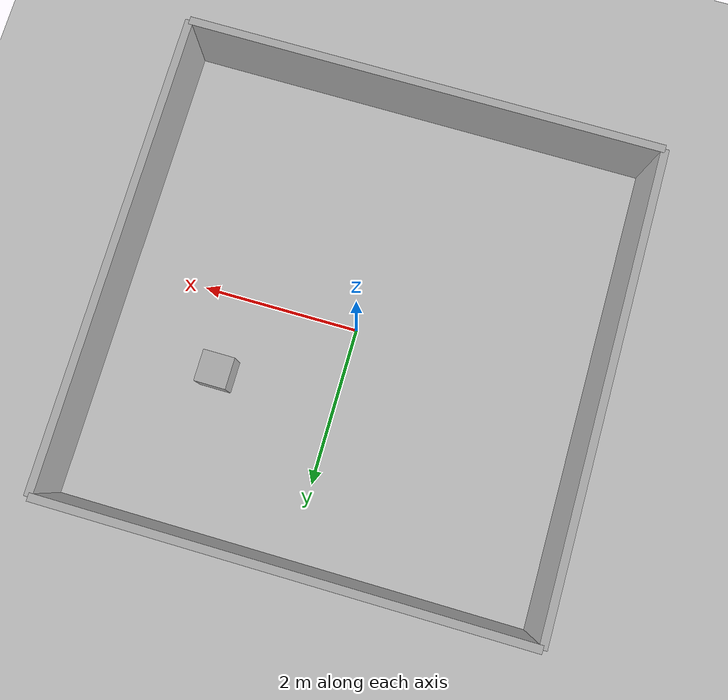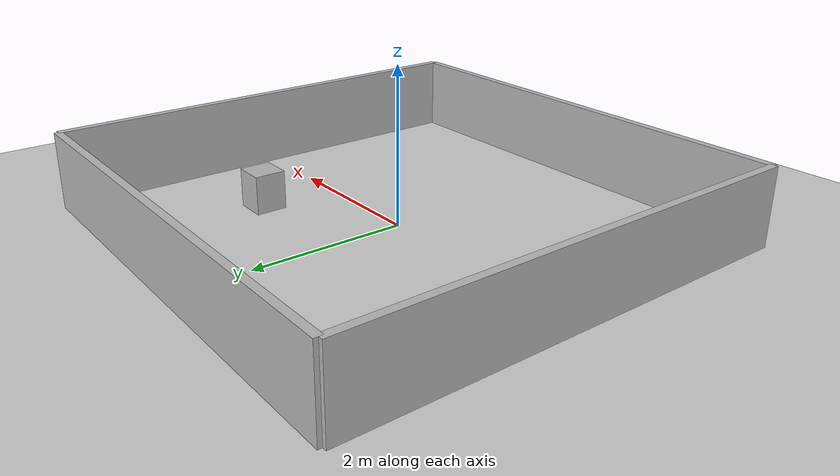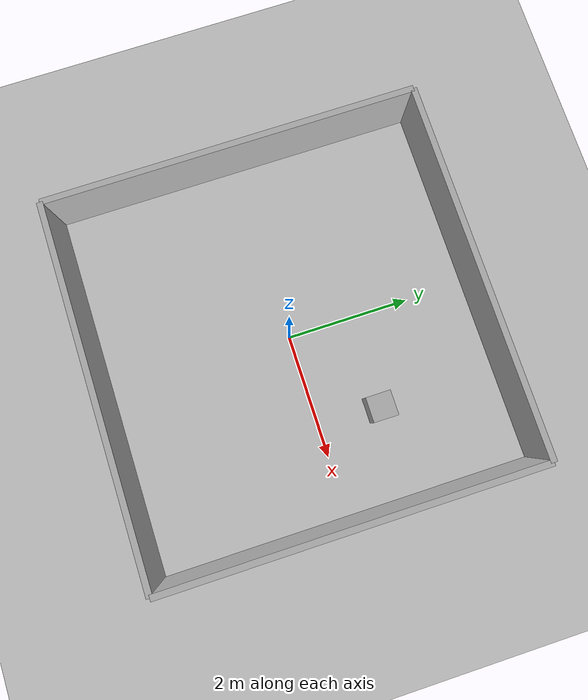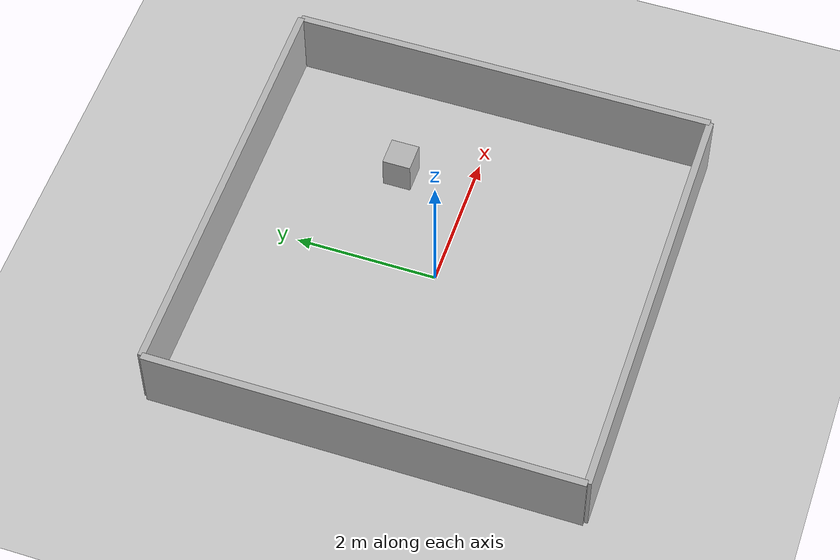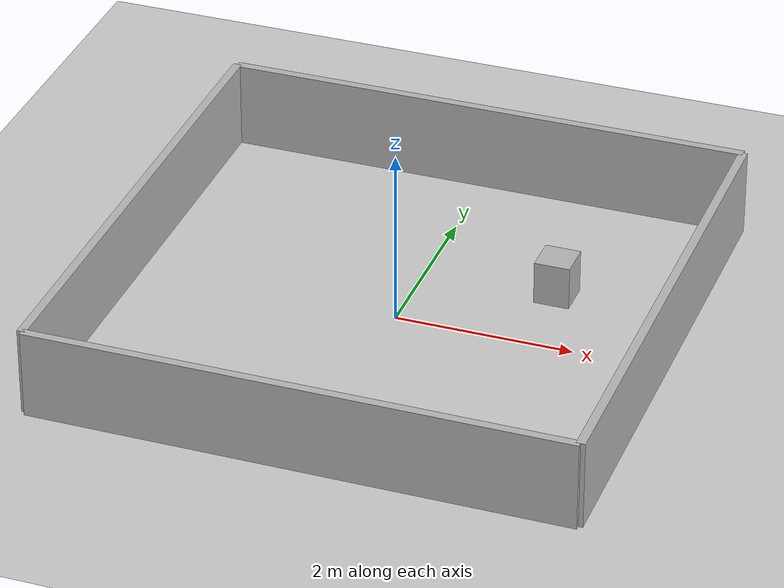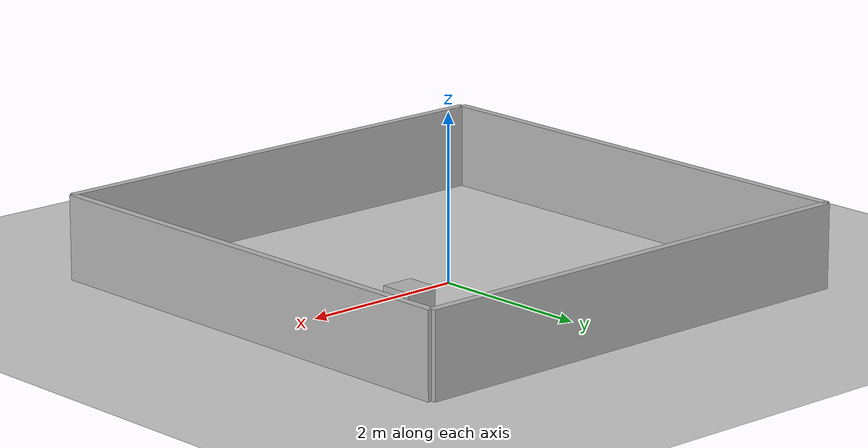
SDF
<?xml version="1.0"?>
<sdf version="1.6">
  <world name="single_obstacle">
    <include>
      <uri>model://sun</uri>
    </include>

    <include>
      <uri>model://ground_plane</uri>
    </include>

    <model name="wall_north">
      <static>true</static>
      <pose>0 3 0.5 0 0 0</pose>
      <link name="link">
        <collision name="collision">
          <geometry><box><size>6 0.1 1.0</size></box></geometry>
        </collision>
        <visual name="visual">
          <geometry><box><size>6 0.1 1.0</size></box></geometry>
        </visual>
      </link>
    </model>

    <model name="wall_south">
      <static>true</static>
      <pose>0 -3 0.5 0 0 0</pose>
      <link name="link">
        <collision name="collision">
          <geometry><box><size>6 0.1 1.0</size></box></geometry>
        </collision>
        <visual name="visual">
          <geometry><box><size>6 0.1 1.0</size></box></geometry>
        </visual>
      </link>
    </model>

    <model name="wall_east">
      <static>true</static>
      <pose>3 0 0.5 0 0 0</pose>
      <link name="link">
        <collision name="collision">
          <geometry><box><size>0.1 6 1.0</size></box></geometry>
        </collision>
        <visual name="visual">
          <geometry><box><size>0.1 6 1.0</size></box></geometry>
        </visual>
      </link>
    </model>

    <model name="wall_west">
      <static>true</static>
      <pose>-3 0 0.5 0 0 0</pose>
      <link name="link">
        <collision name="collision">
          <geometry><box><size>0.1 6 1.0</size></box></geometry>
        </collision>
        <visual name="visual">
          <geometry><box><size>0.1 6 1.0</size></box></geometry>
        </visual>
      </link>
    </model>

    <model name="obstacle_box">
      <static>true</static>
      <pose>1.5 1.0 0.25 0 0 0</pose>
      <link name="link">
        <collision name="collision">
          <geometry><box><size>0.4 0.4 0.5</size></box></geometry>
        </collision>
        <visual name="visual">
          <geometry><box><size>0.4 0.4 0.5</size></box></geometry>
        </visual>
      </link>
    </model>
  </world>
</sdf>
